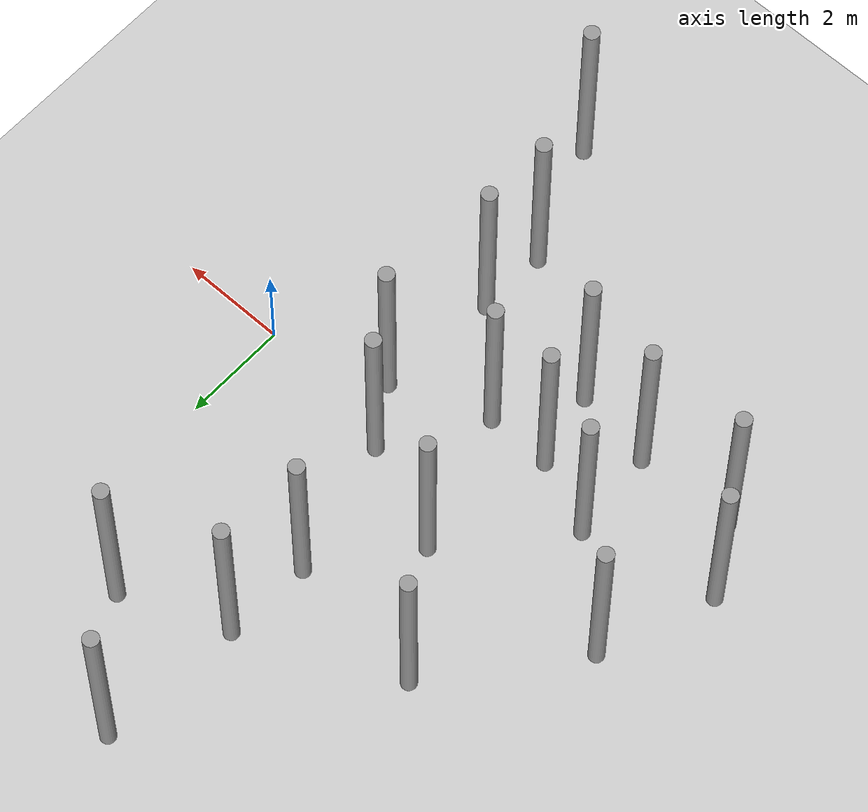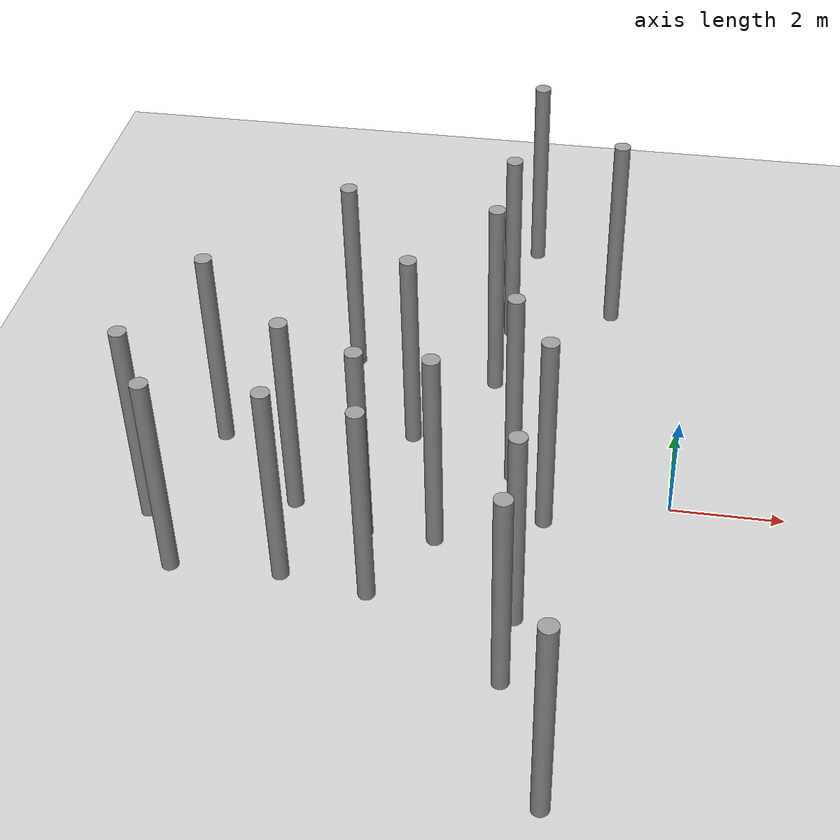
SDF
<sdf version="1.6">
 <world name="default">
  <model name="ground_plane">
   <static>1</static>
   <link name="link">
    <collision name="collision">
     <geometry><plane><normal>0 0 1</normal><size>100 100</size></plane></geometry>
     <surface><friction><ode><mu>100</mu><mu2>50</mu2></ode></friction></surface>
    </collision>
    <visual name="visual">
     <cast_shadows>0</cast_shadows>
     <geometry><plane><normal>0 0 1</normal><size>100 100</size></plane></geometry>
     <material>
      <script><uri>file://media/materials/scripts/gazebo.material</uri><name>Gazebo/Grey</name></script>
     </material>
    </visual>
   </link>
  </model>
  <model name="unit_cylinder">
   <link name="link">
    <inertial>
     <mass>1000</mass>
     <inertia><ixx>145.833</ixx><ixy>0</ixy><ixz>0</ixz><iyy>145.833</iyy><iyz>0</iyz><izz>125</izz></inertia>
    </inertial>
    <visual name="visual">
     <geometry><cylinder><radius>0.15</radius><length>4</length></cylinder></geometry>
     <material>
      <script><name>Gazebo/Grey</name><uri>file://media/materials/scripts/gazebo.material</uri></script>
      <shader type="pixel"><normal_map>__default__</normal_map></shader>
      <ambient>0.3 0.3 0.3 1</ambient>
      <diffuse>0.7 0.7 0.7 1</diffuse>
      <specular>0.01 0.01 0.01 1</specular>
      <emissive>0 0 0 1</emissive>
     </material>
    </visual>
    <collision name="collision">
     <geometry><cylinder><radius>0.15</radius><length>4</length></cylinder></geometry>
     <surface>
      <friction>
       <ode><mu>1</mu><mu2>1</mu2><fdir1>0 0 0</fdir1><slip1>0</slip1><slip2>0</slip2></ode>
       <torsional>
        <coefficient>1</coefficient>
        <patch_radius>0</patch_radius>
        <surface_radius>0</surface_radius>
        <use_patch_radius>1</use_patch_radius>
        <ode><slip>0</slip></ode>
       </torsional>
      </friction>
      <bounce><restitution_coefficient>0</restitution_coefficient><threshold>1e+06</threshold></bounce>
      <contact>
       <collide_without_contact>0</collide_without_contact>
       <collide_without_contact_bitmask>1</collide_without_contact_bitmask>
       <collide_bitmask>1</collide_bitmask>
       <ode>
        <soft_cfm>0</soft_cfm>
        <soft_erp>0.2</soft_erp>
        <kp>1e+13</kp>
        <kd>1</kd>
        <max_vel>0.01</max_vel>
        <min_depth>0</min_depth>
       </ode>
       <bullet>
        <split_impulse>1</split_impulse>
        <split_impulse_penetration_threshold>-0.01</split_impulse_penetration_threshold>
        <soft_cfm>0</soft_cfm>
        <soft_erp>0.2</soft_erp>
        <kp>1e+13</kp>
        <kd>1</kd>
       </bullet>
      </contact>
     </surface>
    </collision>
   </link>
   <static>0</static>
   <pose>-2.1717 -0.620709 2 0 0 -0.002853</pose>
  </model>
  <model name="unit_cylinder_clone_4">
   <link name="link">
    <inertial>
     <mass>1000</mass>
     <inertia><ixx>145.833</ixx><ixy>0</ixy><ixz>0</ixz><iyy>145.833</iyy><iyz>0</iyz><izz>125</izz></inertia>
    </inertial>
    <visual name="visual">
     <geometry><cylinder><radius>0.15</radius><length>4</length></cylinder></geometry>
     <material>
      <script><name>Gazebo/Grey</name><uri>file://media/materials/scripts/gazebo.material</uri></script>
      <shader type="pixel"><normal_map>__default__</normal_map></shader>
      <ambient>0.3 0.3 0.3 1</ambient>
      <diffuse>0.7 0.7 0.7 1</diffuse>
      <specular>0.01 0.01 0.01 1</specular>
      <emissive>0 0 0 1</emissive>
     </material>
    </visual>
    <collision name="collision">
     <geometry><cylinder><radius>0.15</radius><length>4</length></cylinder></geometry>
     <surface>
      <friction>
       <ode><mu>1</mu><mu2>1</mu2><fdir1>0 0 0</fdir1><slip1>0</slip1><slip2>0</slip2></ode>
       <torsional>
        <coefficient>1</coefficient>
        <patch_radius>0</patch_radius>
        <surface_radius>0</surface_radius>
        <use_patch_radius>1</use_patch_radius>
        <ode><slip>0</slip></ode>
       </torsional>
      </friction>
      <bounce><restitution_coefficient>0</restitution_coefficient><threshold>1e+06</threshold></bounce>
      <contact>
       <collide_without_contact>0</collide_without_contact>
       <collide_without_contact_bitmask>1</collide_without_contact_bitmask>
       <collide_bitmask>1</collide_bitmask>
       <ode>
        <soft_cfm>0</soft_cfm>
        <soft_erp>0.2</soft_erp>
        <kp>1e+13</kp>
        <kd>1</kd>
        <max_vel>0.01</max_vel>
        <min_depth>0</min_depth>
       </ode>
       <bullet>
        <split_impulse>1</split_impulse>
        <split_impulse_penetration_threshold>-0.01</split_impulse_penetration_threshold>
        <soft_cfm>0</soft_cfm>
        <soft_erp>0.2</soft_erp>
        <kp>1e+13</kp>
        <kd>1</kd>
       </bullet>
      </contact>
     </surface>
    </collision>
   </link>
   <static>0</static>
   <pose>-3.9809 -1.32842 2 0 0 -0.002698</pose>
  </model>
  <model name="unit_cylinder_clone_5">
   <link name="link">
    <inertial>
     <mass>1000</mass>
     <inertia><ixx>145.833</ixx><ixy>0</ixy><ixz>0</ixz><iyy>145.833</iyy><iyz>0</iyz><izz>125</izz></inertia>
    </inertial>
    <visual name="visual">
     <geometry><cylinder><radius>0.15</radius><length>4</length></cylinder></geometry>
     <material>
      <script><name>Gazebo/Grey</name><uri>file://media/materials/scripts/gazebo.material</uri></script>
      <shader type="pixel"><normal_map>__default__</normal_map></shader>
      <ambient>0.3 0.3 0.3 1</ambient>
      <diffuse>0.7 0.7 0.7 1</diffuse>
      <specular>0.01 0.01 0.01 1</specular>
      <emissive>0 0 0 1</emissive>
     </material>
    </visual>
    <collision name="collision">
     <geometry><cylinder><radius>0.15</radius><length>4</length></cylinder></geometry>
     <surface>
      <friction>
       <ode><mu>1</mu><mu2>1</mu2><fdir1>0 0 0</fdir1><slip1>0</slip1><slip2>0</slip2></ode>
       <torsional>
        <coefficient>1</coefficient>
        <patch_radius>0</patch_radius>
        <surface_radius>0</surface_radius>
        <use_patch_radius>1</use_patch_radius>
        <ode><slip>0</slip></ode>
       </torsional>
      </friction>
      <bounce><restitution_coefficient>0</restitution_coefficient><threshold>1e+06</threshold></bounce>
      <contact>
       <collide_without_contact>0</collide_without_contact>
       <collide_without_contact_bitmask>1</collide_without_contact_bitmask>
       <collide_bitmask>1</collide_bitmask>
       <ode>
        <soft_cfm>0</soft_cfm>
        <soft_erp>0.2</soft_erp>
        <kp>1e+13</kp>
        <kd>1</kd>
        <max_vel>0.01</max_vel>
        <min_depth>0</min_depth>
       </ode>
       <bullet>
        <split_impulse>1</split_impulse>
        <split_impulse_penetration_threshold>-0.01</split_impulse_penetration_threshold>
        <soft_cfm>0</soft_cfm>
        <soft_erp>0.2</soft_erp>
        <kp>1e+13</kp>
        <kd>1</kd>
       </bullet>
      </contact>
     </surface>
    </collision>
   </link>
   <static>0</static>
   <pose>-4.81547 1.25343 1.99999 0 0 -0.002692</pose>
  </model>
  <model name="unit_cylinder_clone_6">
   <link name="link">
    <inertial>
     <mass>1000</mass>
     <inertia><ixx>145.833</ixx><ixy>0</ixy><ixz>0</ixz><iyy>145.833</iyy><iyz>0</iyz><izz>125</izz></inertia>
    </inertial>
    <visual name="visual">
     <geometry><cylinder><radius>0.15</radius><length>4</length></cylinder></geometry>
     <material>
      <script><name>Gazebo/Grey</name><uri>file://media/materials/scripts/gazebo.material</uri></script>
      <shader type="pixel"><normal_map>__default__</normal_map></shader>
      <ambient>0.3 0.3 0.3 1</ambient>
      <diffuse>0.7 0.7 0.7 1</diffuse>
      <specular>0.01 0.01 0.01 1</specular>
      <emissive>0 0 0 1</emissive>
     </material>
    </visual>
    <collision name="collision">
     <geometry><cylinder><radius>0.15</radius><length>4</length></cylinder></geometry>
     <surface>
      <friction>
       <ode><mu>1</mu><mu2>1</mu2><fdir1>0 0 0</fdir1><slip1>0</slip1><slip2>0</slip2></ode>
       <torsional>
        <coefficient>1</coefficient>
        <patch_radius>0</patch_radius>
        <surface_radius>0</surface_radius>
        <use_patch_radius>1</use_patch_radius>
        <ode><slip>0</slip></ode>
       </torsional>
      </friction>
      <bounce><restitution_coefficient>0</restitution_coefficient><threshold>1e+06</threshold></bounce>
      <contact>
       <collide_without_contact>0</collide_without_contact>
       <collide_without_contact_bitmask>1</collide_without_contact_bitmask>
       <collide_bitmask>1</collide_bitmask>
       <ode>
        <soft_cfm>0</soft_cfm>
        <soft_erp>0.2</soft_erp>
        <kp>1e+13</kp>
        <kd>1</kd>
        <max_vel>0.01</max_vel>
        <min_depth>0</min_depth>
       </ode>
       <bullet>
        <split_impulse>1</split_impulse>
        <split_impulse_penetration_threshold>-0.01</split_impulse_penetration_threshold>
        <soft_cfm>0</soft_cfm>
        <soft_erp>0.2</soft_erp>
        <kp>1e+13</kp>
        <kd>1</kd>
       </bullet>
      </contact>
     </surface>
    </collision>
   </link>
   <static>0</static>
   <pose>-3.52321 3.00017 2 0 0 -0.002919</pose>
  </model>
  <model name="unit_cylinder_clone_7">
   <link name="link">
    <inertial>
     <mass>1000</mass>
     <inertia><ixx>145.833</ixx><ixy>0</ixy><ixz>0</ixz><iyy>145.833</iyy><iyz>0</iyz><izz>125</izz></inertia>
    </inertial>
    <visual name="visual">
     <geometry><cylinder><radius>0.15</radius><length>4</length></cylinder></geometry>
     <material>
      <script><name>Gazebo/Grey</name><uri>file://media/materials/scripts/gazebo.material</uri></script>
      <shader type="pixel"><normal_map>__default__</normal_map></shader>
      <ambient>0.3 0.3 0.3 1</ambient>
      <diffuse>0.7 0.7 0.7 1</diffuse>
      <specular>0.01 0.01 0.01 1</specular>
      <emissive>0 0 0 1</emissive>
     </material>
    </visual>
    <collision name="collision">
     <geometry><cylinder><radius>0.15</radius><length>4</length></cylinder></geometry>
     <surface>
      <friction>
       <ode><mu>1</mu><mu2>1</mu2><fdir1>0 0 0</fdir1><slip1>0</slip1><slip2>0</slip2></ode>
       <torsional>
        <coefficient>1</coefficient>
        <patch_radius>0</patch_radius>
        <surface_radius>0</surface_radius>
        <use_patch_radius>1</use_patch_radius>
        <ode><slip>0</slip></ode>
       </torsional>
      </friction>
      <bounce><restitution_coefficient>0</restitution_coefficient><threshold>1e+06</threshold></bounce>
      <contact>
       <collide_without_contact>0</collide_without_contact>
       <collide_without_contact_bitmask>1</collide_without_contact_bitmask>
       <collide_bitmask>1</collide_bitmask>
       <ode>
        <soft_cfm>0</soft_cfm>
        <soft_erp>0.2</soft_erp>
        <kp>1e+13</kp>
        <kd>1</kd>
        <max_vel>0.01</max_vel>
        <min_depth>0</min_depth>
       </ode>
       <bullet>
        <split_impulse>1</split_impulse>
        <split_impulse_penetration_threshold>-0.01</split_impulse_penetration_threshold>
        <soft_cfm>0</soft_cfm>
        <soft_erp>0.2</soft_erp>
        <kp>1e+13</kp>
        <kd>1</kd>
       </bullet>
      </contact>
     </surface>
    </collision>
   </link>
   <static>0</static>
   <pose>-2.39989 -2.93188 2 0 0 -0.002818</pose>
  </model>
  <model name="unit_cylinder_clone_8">
   <link name="link">
    <inertial>
     <mass>1000</mass>
     <inertia><ixx>145.833</ixx><ixy>0</ixy><ixz>0</ixz><iyy>145.833</iyy><iyz>0</iyz><izz>125</izz></inertia>
    </inertial>
    <visual name="visual">
     <geometry><cylinder><radius>0.15</radius><length>4</length></cylinder></geometry>
     <material>
      <script><name>Gazebo/Grey</name><uri>file://media/materials/scripts/gazebo.material</uri></script>
      <shader type="pixel"><normal_map>__default__</normal_map></shader>
      <ambient>0.3 0.3 0.3 1</ambient>
      <diffuse>0.7 0.7 0.7 1</diffuse>
      <specular>0.01 0.01 0.01 1</specular>
      <emissive>0 0 0 1</emissive>
     </material>
    </visual>
    <collision name="collision">
     <geometry><cylinder><radius>0.15</radius><length>4</length></cylinder></geometry>
     <surface>
      <friction>
       <ode><mu>1</mu><mu2>1</mu2><fdir1>0 0 0</fdir1><slip1>0</slip1><slip2>0</slip2></ode>
       <torsional>
        <coefficient>1</coefficient>
        <patch_radius>0</patch_radius>
        <surface_radius>0</surface_radius>
        <use_patch_radius>1</use_patch_radius>
        <ode><slip>0</slip></ode>
       </torsional>
      </friction>
      <bounce><restitution_coefficient>0</restitution_coefficient><threshold>1e+06</threshold></bounce>
      <contact>
       <collide_without_contact>0</collide_without_contact>
       <collide_without_contact_bitmask>1</collide_without_contact_bitmask>
       <collide_bitmask>1</collide_bitmask>
       <ode>
        <soft_cfm>0</soft_cfm>
        <soft_erp>0.2</soft_erp>
        <kp>1e+13</kp>
        <kd>1</kd>
        <max_vel>0.01</max_vel>
        <min_depth>0</min_depth>
       </ode>
       <bullet>
        <split_impulse>1</split_impulse>
        <split_impulse_penetration_threshold>-0.01</split_impulse_penetration_threshold>
        <soft_cfm>0</soft_cfm>
        <soft_erp>0.2</soft_erp>
        <kp>1e+13</kp>
        <kd>1</kd>
       </bullet>
      </contact>
     </surface>
    </collision>
   </link>
   <static>0</static>
   <pose>-2.85607 0.444434 2 0 0 -0.002866</pose>
  </model>
  <model name="unit_cylinder_clone_10">
   <link name="link">
    <inertial>
     <mass>1000</mass>
     <inertia><ixx>145.833</ixx><ixy>0</ixy><ixz>0</ixz><iyy>145.833</iyy><iyz>0</iyz><izz>125</izz></inertia>
    </inertial>
    <visual name="visual">
     <geometry><cylinder><radius>0.15</radius><length>4</length></cylinder></geometry>
     <material>
      <script><name>Gazebo/Grey</name><uri>file://media/materials/scripts/gazebo.material</uri></script>
      <shader type="pixel"><normal_map>__default__</normal_map></shader>
      <ambient>0.3 0.3 0.3 1</ambient>
      <diffuse>0.7 0.7 0.7 1</diffuse>
      <specular>0.01 0.01 0.01 1</specular>
      <emissive>0 0 0 1</emissive>
     </material>
    </visual>
    <collision name="collision">
     <geometry><cylinder><radius>0.15</radius><length>4</length></cylinder></geometry>
     <surface>
      <friction>
       <ode><mu>1</mu><mu2>1</mu2><fdir1>0 0 0</fdir1><slip1>0</slip1><slip2>0</slip2></ode>
       <torsional>
        <coefficient>1</coefficient>
        <patch_radius>0</patch_radius>
        <surface_radius>0</surface_radius>
        <use_patch_radius>1</use_patch_radius>
        <ode><slip>0</slip></ode>
       </torsional>
      </friction>
      <bounce><restitution_coefficient>0</restitution_coefficient><threshold>1e+06</threshold></bounce>
      <contact>
       <collide_without_contact>0</collide_without_contact>
       <collide_without_contact_bitmask>1</collide_without_contact_bitmask>
       <collide_bitmask>1</collide_bitmask>
       <ode>
        <soft_cfm>0</soft_cfm>
        <soft_erp>0.2</soft_erp>
        <kp>1e+13</kp>
        <kd>1</kd>
        <max_vel>0.01</max_vel>
        <min_depth>0</min_depth>
       </ode>
       <bullet>
        <split_impulse>1</split_impulse>
        <split_impulse_penetration_threshold>-0.01</split_impulse_penetration_threshold>
        <soft_cfm>0</soft_cfm>
        <soft_erp>0.2</soft_erp>
        <kp>1e+13</kp>
        <kd>1</kd>
       </bullet>
      </contact>
     </surface>
    </collision>
   </link>
   <static>0</static>
   <pose>-6.42357 -2.50125 2 0 0 -0.002756</pose>
  </model>
  <model name="unit_cylinder_clone_11">
   <link name="link">
    <inertial>
     <mass>1000</mass>
     <inertia><ixx>145.833</ixx><ixy>0</ixy><ixz>0</ixz><iyy>145.833</iyy><iyz>0</iyz><izz>125</izz></inertia>
    </inertial>
    <visual name="visual">
     <geometry><cylinder><radius>0.15</radius><length>4</length></cylinder></geometry>
     <material>
      <script><name>Gazebo/Grey</name><uri>file://media/materials/scripts/gazebo.material</uri></script>
      <shader type="pixel"><normal_map>__default__</normal_map></shader>
      <ambient>0.3 0.3 0.3 1</ambient>
      <diffuse>0.7 0.7 0.7 1</diffuse>
      <specular>0.01 0.01 0.01 1</specular>
      <emissive>0 0 0 1</emissive>
     </material>
    </visual>
    <collision name="collision">
     <geometry><cylinder><radius>0.15</radius><length>4</length></cylinder></geometry>
     <surface>
      <friction>
       <ode><mu>1</mu><mu2>1</mu2><fdir1>0 0 0</fdir1><slip1>0</slip1><slip2>0</slip2></ode>
       <torsional>
        <coefficient>1</coefficient>
        <patch_radius>0</patch_radius>
        <surface_radius>0</surface_radius>
        <use_patch_radius>1</use_patch_radius>
        <ode><slip>0</slip></ode>
       </torsional>
      </friction>
      <bounce><restitution_coefficient>0</restitution_coefficient><threshold>1e+06</threshold></bounce>
      <contact>
       <collide_without_contact>0</collide_without_contact>
       <collide_without_contact_bitmask>1</collide_without_contact_bitmask>
       <collide_bitmask>1</collide_bitmask>
       <ode>
        <soft_cfm>0</soft_cfm>
        <soft_erp>0.2</soft_erp>
        <kp>1e+13</kp>
        <kd>1</kd>
        <max_vel>0.01</max_vel>
        <min_depth>0</min_depth>
       </ode>
       <bullet>
        <split_impulse>1</split_impulse>
        <split_impulse_penetration_threshold>-0.01</split_impulse_penetration_threshold>
        <soft_cfm>0</soft_cfm>
        <soft_erp>0.2</soft_erp>
        <kp>1e+13</kp>
        <kd>1</kd>
       </bullet>
      </contact>
     </surface>
    </collision>
   </link>
   <static>0</static>
   <pose>-4.89753 -2.73769 2 0 0 -0.002756</pose>
  </model>
  <model name="unit_cylinder_clone_13">
   <link name="link">
    <inertial>
     <mass>1000</mass>
     <inertia><ixx>145.833</ixx><ixy>0</ixy><ixz>0</ixz><iyy>145.833</iyy><iyz>0</iyz><izz>125</izz></inertia>
    </inertial>
    <visual name="visual">
     <geometry><cylinder><radius>0.15</radius><length>4</length></cylinder></geometry>
     <material>
      <script><name>Gazebo/Grey</name><uri>file://media/materials/scripts/gazebo.material</uri></script>
      <shader type="pixel"><normal_map>__default__</normal_map></shader>
      <ambient>0.3 0.3 0.3 1</ambient>
      <diffuse>0.7 0.7 0.7 1</diffuse>
      <specular>0.01 0.01 0.01 1</specular>
      <emissive>0 0 0 1</emissive>
     </material>
    </visual>
    <collision name="collision">
     <geometry><cylinder><radius>0.15</radius><length>4</length></cylinder></geometry>
     <surface>
      <friction>
       <ode><mu>1</mu><mu2>1</mu2><fdir1>0 0 0</fdir1><slip1>0</slip1><slip2>0</slip2></ode>
       <torsional>
        <coefficient>1</coefficient>
        <patch_radius>0</patch_radius>
        <surface_radius>0</surface_radius>
        <use_patch_radius>1</use_patch_radius>
        <ode><slip>0</slip></ode>
       </torsional>
      </friction>
      <bounce><restitution_coefficient>0</restitution_coefficient><threshold>1e+06</threshold></bounce>
      <contact>
       <collide_without_contact>0</collide_without_contact>
       <collide_without_contact_bitmask>1</collide_without_contact_bitmask>
       <collide_bitmask>1</collide_bitmask>
       <ode>
        <soft_cfm>0</soft_cfm>
        <soft_erp>0.2</soft_erp>
        <kp>1e+13</kp>
        <kd>1</kd>
        <max_vel>0.01</max_vel>
        <min_depth>0</min_depth>
       </ode>
       <bullet>
        <split_impulse>1</split_impulse>
        <split_impulse_penetration_threshold>-0.01</split_impulse_penetration_threshold>
        <soft_cfm>0</soft_cfm>
        <soft_erp>0.2</soft_erp>
        <kp>1e+13</kp>
        <kd>1</kd>
       </bullet>
      </contact>
     </surface>
    </collision>
   </link>
   <static>0</static>
   <pose>-5.21821 -1.32978 1.99999 0 0 -0.002718</pose>
  </model>
  <model name="unit_cylinder_clone_14">
   <link name="link">
    <inertial>
     <mass>1000</mass>
     <inertia><ixx>145.833</ixx><ixy>0</ixy><ixz>0</ixz><iyy>145.833</iyy><iyz>0</iyz><izz>125</izz></inertia>
    </inertial>
    <visual name="visual">
     <geometry><cylinder><radius>0.15</radius><length>4</length></cylinder></geometry>
     <material>
      <script><name>Gazebo/Grey</name><uri>file://media/materials/scripts/gazebo.material</uri></script>
      <shader type="pixel"><normal_map>__default__</normal_map></shader>
      <ambient>0.3 0.3 0.3 1</ambient>
      <diffuse>0.7 0.7 0.7 1</diffuse>
      <specular>0.01 0.01 0.01 1</specular>
      <emissive>0 0 0 1</emissive>
     </material>
    </visual>
    <collision name="collision">
     <geometry><cylinder><radius>0.15</radius><length>4</length></cylinder></geometry>
     <surface>
      <friction>
       <ode><mu>1</mu><mu2>1</mu2><fdir1>0 0 0</fdir1><slip1>0</slip1><slip2>0</slip2></ode>
       <torsional>
        <coefficient>1</coefficient>
        <patch_radius>0</patch_radius>
        <surface_radius>0</surface_radius>
        <use_patch_radius>1</use_patch_radius>
        <ode><slip>0</slip></ode>
       </torsional>
      </friction>
      <bounce><restitution_coefficient>0</restitution_coefficient><threshold>1e+06</threshold></bounce>
      <contact>
       <collide_without_contact>0</collide_without_contact>
       <collide_without_contact_bitmask>1</collide_without_contact_bitmask>
       <collide_bitmask>1</collide_bitmask>
       <ode>
        <soft_cfm>0</soft_cfm>
        <soft_erp>0.2</soft_erp>
        <kp>1e+13</kp>
        <kd>1</kd>
        <max_vel>0.01</max_vel>
        <min_depth>0</min_depth>
       </ode>
       <bullet>
        <split_impulse>1</split_impulse>
        <split_impulse_penetration_threshold>-0.01</split_impulse_penetration_threshold>
        <soft_cfm>0</soft_cfm>
        <soft_erp>0.2</soft_erp>
        <kp>1e+13</kp>
        <kd>1</kd>
       </bullet>
      </contact>
     </surface>
    </collision>
   </link>
   <static>0</static>
   <pose>-6.57283 -0.768217 2 0 0 -0.003051</pose>
  </model>
  <model name="unit_cylinder_clone_15">
   <link name="link">
    <inertial>
     <mass>1000</mass>
     <inertia><ixx>145.833</ixx><ixy>0</ixy><ixz>0</ixz><iyy>145.833</iyy><iyz>0</iyz><izz>125</izz></inertia>
    </inertial>
    <visual name="visual">
     <geometry><cylinder><radius>0.15</radius><length>4</length></cylinder></geometry>
     <material>
      <script><name>Gazebo/Grey</name><uri>file://media/materials/scripts/gazebo.material</uri></script>
      <shader type="pixel"><normal_map>__default__</normal_map></shader>
      <ambient>0.3 0.3 0.3 1</ambient>
      <diffuse>0.7 0.7 0.7 1</diffuse>
      <specular>0.01 0.01 0.01 1</specular>
      <emissive>0 0 0 1</emissive>
     </material>
    </visual>
    <collision name="collision">
     <geometry><cylinder><radius>0.15</radius><length>4</length></cylinder></geometry>
     <surface>
      <friction>
       <ode><mu>1</mu><mu2>1</mu2><fdir1>0 0 0</fdir1><slip1>0</slip1><slip2>0</slip2></ode>
       <torsional>
        <coefficient>1</coefficient>
        <patch_radius>0</patch_radius>
        <surface_radius>0</surface_radius>
        <use_patch_radius>1</use_patch_radius>
        <ode><slip>0</slip></ode>
       </torsional>
      </friction>
      <bounce><restitution_coefficient>0</restitution_coefficient><threshold>1e+06</threshold></bounce>
      <contact>
       <collide_without_contact>0</collide_without_contact>
       <collide_without_contact_bitmask>1</collide_without_contact_bitmask>
       <collide_bitmask>1</collide_bitmask>
       <ode>
        <soft_cfm>0</soft_cfm>
        <soft_erp>0.2</soft_erp>
        <kp>1e+13</kp>
        <kd>1</kd>
        <max_vel>0.01</max_vel>
        <min_depth>0</min_depth>
       </ode>
       <bullet>
        <split_impulse>1</split_impulse>
        <split_impulse_penetration_threshold>-0.01</split_impulse_penetration_threshold>
        <soft_cfm>0</soft_cfm>
        <soft_erp>0.2</soft_erp>
        <kp>1e+13</kp>
        <kd>1</kd>
       </bullet>
      </contact>
     </surface>
    </collision>
   </link>
   <static>0</static>
   <pose>-8.32866 -2.56412 1.99999 0 0 -0.002834</pose>
  </model>
  <model name="unit_cylinder_clone_16">
   <link name="link">
    <inertial>
     <mass>1000</mass>
     <inertia><ixx>145.833</ixx><ixy>0</ixy><ixz>0</ixz><iyy>145.833</iyy><iyz>0</iyz><izz>125</izz></inertia>
    </inertial>
    <visual name="visual">
     <geometry><cylinder><radius>0.15</radius><length>4</length></cylinder></geometry>
     <material>
      <script><name>Gazebo/Grey</name><uri>file://media/materials/scripts/gazebo.material</uri></script>
      <shader type="pixel"><normal_map>__default__</normal_map></shader>
      <ambient>0.3 0.3 0.3 1</ambient>
      <diffuse>0.7 0.7 0.7 1</diffuse>
      <specular>0.01 0.01 0.01 1</specular>
      <emissive>0 0 0 1</emissive>
     </material>
    </visual>
    <collision name="collision">
     <geometry><cylinder><radius>0.15</radius><length>4</length></cylinder></geometry>
     <surface>
      <friction>
       <ode><mu>1</mu><mu2>1</mu2><fdir1>0 0 0</fdir1><slip1>0</slip1><slip2>0</slip2></ode>
       <torsional>
        <coefficient>1</coefficient>
        <patch_radius>0</patch_radius>
        <surface_radius>0</surface_radius>
        <use_patch_radius>1</use_patch_radius>
        <ode><slip>0</slip></ode>
       </torsional>
      </friction>
      <bounce><restitution_coefficient>0</restitution_coefficient><threshold>1e+06</threshold></bounce>
      <contact>
       <collide_without_contact>0</collide_without_contact>
       <collide_without_contact_bitmask>1</collide_without_contact_bitmask>
       <collide_bitmask>1</collide_bitmask>
       <ode>
        <soft_cfm>0</soft_cfm>
        <soft_erp>0.2</soft_erp>
        <kp>1e+13</kp>
        <kd>1</kd>
        <max_vel>0.01</max_vel>
        <min_depth>0</min_depth>
       </ode>
       <bullet>
        <split_impulse>1</split_impulse>
        <split_impulse_penetration_threshold>-0.01</split_impulse_penetration_threshold>
        <soft_cfm>0</soft_cfm>
        <soft_erp>0.2</soft_erp>
        <kp>1e+13</kp>
        <kd>1</kd>
       </bullet>
      </contact>
     </surface>
    </collision>
   </link>
   <static>0</static>
   <pose>-9.06624 -1.36021 1.99999 0 0 -0.002786</pose>
  </model>
  <model name="unit_cylinder_clone_17">
   <link name="link">
    <inertial>
     <mass>1000</mass>
     <inertia><ixx>145.833</ixx><ixy>0</ixy><ixz>0</ixz><iyy>145.833</iyy><iyz>0</iyz><izz>125</izz></inertia>
    </inertial>
    <visual name="visual">
     <geometry><cylinder><radius>0.15</radius><length>4</length></cylinder></geometry>
     <material>
      <script><name>Gazebo/Grey</name><uri>file://media/materials/scripts/gazebo.material</uri></script>
      <shader type="pixel"><normal_map>__default__</normal_map></shader>
      <ambient>0.3 0.3 0.3 1</ambient>
      <diffuse>0.7 0.7 0.7 1</diffuse>
      <specular>0.01 0.01 0.01 1</specular>
      <emissive>0 0 0 1</emissive>
     </material>
    </visual>
    <collision name="collision">
     <geometry><cylinder><radius>0.15</radius><length>4</length></cylinder></geometry>
     <surface>
      <friction>
       <ode><mu>1</mu><mu2>1</mu2><fdir1>0 0 0</fdir1><slip1>0</slip1><slip2>0</slip2></ode>
       <torsional>
        <coefficient>1</coefficient>
        <patch_radius>0</patch_radius>
        <surface_radius>0</surface_radius>
        <use_patch_radius>1</use_patch_radius>
        <ode><slip>0</slip></ode>
       </torsional>
      </friction>
      <bounce><restitution_coefficient>0</restitution_coefficient><threshold>1e+06</threshold></bounce>
      <contact>
       <collide_without_contact>0</collide_without_contact>
       <collide_without_contact_bitmask>1</collide_without_contact_bitmask>
       <collide_bitmask>1</collide_bitmask>
       <ode>
        <soft_cfm>0</soft_cfm>
        <soft_erp>0.2</soft_erp>
        <kp>1e+13</kp>
        <kd>1</kd>
        <max_vel>0.01</max_vel>
        <min_depth>0</min_depth>
       </ode>
       <bullet>
        <split_impulse>1</split_impulse>
        <split_impulse_penetration_threshold>-0.01</split_impulse_penetration_threshold>
        <soft_cfm>0</soft_cfm>
        <soft_erp>0.2</soft_erp>
        <kp>1e+13</kp>
        <kd>1</kd>
       </bullet>
      </contact>
     </surface>
    </collision>
   </link>
   <static>0</static>
   <pose>-8.26971 0.791684 2 0 0 -0.002864</pose>
  </model>
  <model name="unit_cylinder_clone_19">
   <link name="link">
    <inertial>
     <mass>1000</mass>
     <inertia><ixx>145.833</ixx><ixy>0</ixy><ixz>0</ixz><iyy>145.833</iyy><iyz>0</iyz><izz>125</izz></inertia>
    </inertial>
    <visual name="visual">
     <geometry><cylinder><radius>0.15</radius><length>4</length></cylinder></geometry>
     <material>
      <script><name>Gazebo/Grey</name><uri>file://media/materials/scripts/gazebo.material</uri></script>
      <shader type="pixel"><normal_map>__default__</normal_map></shader>
      <ambient>0.3 0.3 0.3 1</ambient>
      <diffuse>0.7 0.7 0.7 1</diffuse>
      <specular>0.01 0.01 0.01 1</specular>
      <emissive>0 0 0 1</emissive>
     </material>
    </visual>
    <collision name="collision">
     <geometry><cylinder><radius>0.15</radius><length>4</length></cylinder></geometry>
     <surface>
      <friction>
       <ode><mu>1</mu><mu2>1</mu2><fdir1>0 0 0</fdir1><slip1>0</slip1><slip2>0</slip2></ode>
       <torsional>
        <coefficient>1</coefficient>
        <patch_radius>0</patch_radius>
        <surface_radius>0</surface_radius>
        <use_patch_radius>1</use_patch_radius>
        <ode><slip>0</slip></ode>
       </torsional>
      </friction>
      <bounce><restitution_coefficient>0</restitution_coefficient><threshold>1e+06</threshold></bounce>
      <contact>
       <collide_without_contact>0</collide_without_contact>
       <collide_without_contact_bitmask>1</collide_without_contact_bitmask>
       <collide_bitmask>1</collide_bitmask>
       <ode>
        <soft_cfm>0</soft_cfm>
        <soft_erp>0.2</soft_erp>
        <kp>1e+13</kp>
        <kd>1</kd>
        <max_vel>0.01</max_vel>
        <min_depth>0</min_depth>
       </ode>
       <bullet>
        <split_impulse>1</split_impulse>
        <split_impulse_penetration_threshold>-0.01</split_impulse_penetration_threshold>
        <soft_cfm>0</soft_cfm>
        <soft_erp>0.2</soft_erp>
        <kp>1e+13</kp>
        <kd>1</kd>
       </bullet>
      </contact>
     </surface>
    </collision>
   </link>
   <static>0</static>
   <pose>-3.20756 7.43044 2 0 0 -0.003296</pose>
  </model>
  <model name="unit_cylinder_clone_25">
   <link name="link">
    <inertial>
     <mass>1000</mass>
     <inertia><ixx>145.833</ixx><ixy>0</ixy><ixz>0</ixz><iyy>145.833</iyy><iyz>0</iyz><izz>125</izz></inertia>
    </inertial>
    <visual name="visual">
     <geometry><cylinder><radius>0.15</radius><length>4</length></cylinder></geometry>
     <material>
      <script><name>Gazebo/Grey</name><uri>file://media/materials/scripts/gazebo.material</uri></script>
      <shader type="pixel"><normal_map>__default__</normal_map></shader>
      <ambient>0.3 0.3 0.3 1</ambient>
      <diffuse>0.7 0.7 0.7 1</diffuse>
      <specular>0.01 0.01 0.01 1</specular>
      <emissive>0 0 0 1</emissive>
     </material>
    </visual>
    <collision name="collision">
     <geometry><cylinder><radius>0.15</radius><length>4</length></cylinder></geometry>
     <surface>
      <friction>
       <ode><mu>1</mu><mu2>1</mu2><fdir1>0 0 0</fdir1><slip1>0</slip1><slip2>0</slip2></ode>
       <torsional>
        <coefficient>1</coefficient>
        <patch_radius>0</patch_radius>
        <surface_radius>0</surface_radius>
        <use_patch_radius>1</use_patch_radius>
        <ode><slip>0</slip></ode>
       </torsional>
      </friction>
      <bounce><restitution_coefficient>0</restitution_coefficient><threshold>1e+06</threshold></bounce>
      <contact>
       <collide_without_contact>0</collide_without_contact>
       <collide_without_contact_bitmask>1</collide_without_contact_bitmask>
       <collide_bitmask>1</collide_bitmask>
       <ode>
        <soft_cfm>0</soft_cfm>
        <soft_erp>0.2</soft_erp>
        <kp>1e+13</kp>
        <kd>1</kd>
        <max_vel>0.01</max_vel>
        <min_depth>0</min_depth>
       </ode>
       <bullet>
        <split_impulse>1</split_impulse>
        <split_impulse_penetration_threshold>-0.01</split_impulse_penetration_threshold>
        <soft_cfm>0</soft_cfm>
        <soft_erp>0.2</soft_erp>
        <kp>1e+13</kp>
        <kd>1</kd>
       </bullet>
      </contact>
     </surface>
    </collision>
   </link>
   <static>0</static>
   <pose>-1.48635 5.46296 1.99999 0 0 -0.002769</pose>
  </model>
  <model name="unit_cylinder_clone_39">
   <link name="link">
    <inertial>
     <mass>1000</mass>
     <inertia><ixx>145.833</ixx><ixy>0</ixy><ixz>0</ixz><iyy>145.833</iyy><iyz>0</iyz><izz>125</izz></inertia>
    </inertial>
    <visual name="visual">
     <geometry><cylinder><radius>0.15</radius><length>4</length></cylinder></geometry>
     <material>
      <script><name>Gazebo/Grey</name><uri>file://media/materials/scripts/gazebo.material</uri></script>
      <shader type="pixel"><normal_map>__default__</normal_map></shader>
      <ambient>0.3 0.3 0.3 1</ambient>
      <diffuse>0.7 0.7 0.7 1</diffuse>
      <specular>0.01 0.01 0.01 1</specular>
      <emissive>0 0 0 1</emissive>
     </material>
    </visual>
    <collision name="collision">
     <geometry><cylinder><radius>0.15</radius><length>4</length></cylinder></geometry>
     <surface>
      <friction>
       <ode><mu>1</mu><mu2>1</mu2><fdir1>0 0 0</fdir1><slip1>0</slip1><slip2>0</slip2></ode>
       <torsional>
        <coefficient>1</coefficient>
        <patch_radius>0</patch_radius>
        <surface_radius>0</surface_radius>
        <use_patch_radius>1</use_patch_radius>
        <ode><slip>0</slip></ode>
       </torsional>
      </friction>
      <bounce><restitution_coefficient>0</restitution_coefficient><threshold>1e+06</threshold></bounce>
      <contact>
       <collide_without_contact>0</collide_without_contact>
       <collide_without_contact_bitmask>1</collide_without_contact_bitmask>
       <collide_bitmask>1</collide_bitmask>
       <ode>
        <soft_cfm>0</soft_cfm>
        <soft_erp>0.2</soft_erp>
        <kp>1e+13</kp>
        <kd>1</kd>
        <max_vel>0.01</max_vel>
        <min_depth>0</min_depth>
       </ode>
       <bullet>
        <split_impulse>1</split_impulse>
        <split_impulse_penetration_threshold>-0.01</split_impulse_penetration_threshold>
        <soft_cfm>0</soft_cfm>
        <soft_erp>0.2</soft_erp>
        <kp>1e+13</kp>
        <kd>1</kd>
       </bullet>
      </contact>
     </surface>
    </collision>
   </link>
   <static>0</static>
   <pose>-1.55211 -6.51046 1.99999 0 0 -0.002813</pose>
  </model>
  <model name="unit_cylinder_clone_43">
   <link name="link">
    <inertial>
     <mass>1000</mass>
     <inertia><ixx>145.833</ixx><ixy>0</ixy><ixz>0</ixz><iyy>145.833</iyy><iyz>0</iyz><izz>125</izz></inertia>
    </inertial>
    <visual name="visual">
     <geometry><cylinder><radius>0.15</radius><length>4</length></cylinder></geometry>
     <material>
      <script><name>Gazebo/Grey</name><uri>file://media/materials/scripts/gazebo.material</uri></script>
      <shader type="pixel"><normal_map>__default__</normal_map></shader>
      <ambient>0.3 0.3 0.3 1</ambient>
      <diffuse>0.7 0.7 0.7 1</diffuse>
      <specular>0.01 0.01 0.01 1</specular>
      <emissive>0 0 0 1</emissive>
     </material>
    </visual>
    <collision name="collision">
     <geometry><cylinder><radius>0.15</radius><length>4</length></cylinder></geometry>
     <surface>
      <friction>
       <ode><mu>1</mu><mu2>1</mu2><fdir1>0 0 0</fdir1><slip1>0</slip1><slip2>0</slip2></ode>
       <torsional>
        <coefficient>1</coefficient>
        <patch_radius>0</patch_radius>
        <surface_radius>0</surface_radius>
        <use_patch_radius>1</use_patch_radius>
        <ode><slip>0</slip></ode>
       </torsional>
      </friction>
      <bounce><restitution_coefficient>0</restitution_coefficient><threshold>1e+06</threshold></bounce>
      <contact>
       <collide_without_contact>0</collide_without_contact>
       <collide_without_contact_bitmask>1</collide_without_contact_bitmask>
       <collide_bitmask>1</collide_bitmask>
       <ode>
        <soft_cfm>0</soft_cfm>
        <soft_erp>0.2</soft_erp>
        <kp>1e+13</kp>
        <kd>1</kd>
        <max_vel>0.01</max_vel>
        <min_depth>0</min_depth>
       </ode>
       <bullet>
        <split_impulse>1</split_impulse>
        <split_impulse_penetration_threshold>-0.01</split_impulse_penetration_threshold>
        <soft_cfm>0</soft_cfm>
        <soft_erp>0.2</soft_erp>
        <kp>1e+13</kp>
        <kd>1</kd>
       </bullet>
      </contact>
     </surface>
    </collision>
   </link>
   <static>0</static>
   <pose>-2.44237 -4.26844 2 0 0 -0.003264</pose>
  </model>
  <model name="unit_cylinder_clone_8_clone">
   <link name="link">
    <inertial>
     <mass>1000</mass>
     <inertia><ixx>145.833</ixx><ixy>0</ixy><ixz>0</ixz><iyy>145.833</iyy><iyz>0</iyz><izz>125</izz></inertia>
    </inertial>
    <visual name="visual">
     <geometry><cylinder><radius>0.15</radius><length>4</length></cylinder></geometry>
     <material>
      <script><name>Gazebo/Grey</name><uri>file://media/materials/scripts/gazebo.material</uri></script>
      <shader type="pixel"><normal_map>__default__</normal_map></shader>
      <ambient>0.3 0.3 0.3 1</ambient>
      <diffuse>0.7 0.7 0.7 1</diffuse>
      <specular>0.01 0.01 0.01 1</specular>
      <emissive>0 0 0 1</emissive>
     </material>
    </visual>
    <collision name="collision">
     <geometry><cylinder><radius>0.15</radius><length>4</length></cylinder></geometry>
     <surface>
      <friction>
       <ode><mu>1</mu><mu2>1</mu2><fdir1>0 0 0</fdir1><slip1>0</slip1><slip2>0</slip2></ode>
       <torsional>
        <coefficient>1</coefficient>
        <patch_radius>0</patch_radius>
        <surface_radius>0</surface_radius>
        <use_patch_radius>1</use_patch_radius>
        <ode><slip>0</slip></ode>
       </torsional>
      </friction>
      <bounce><restitution_coefficient>0</restitution_coefficient><threshold>1e+06</threshold></bounce>
      <contact>
       <collide_without_contact>0</collide_without_contact>
       <collide_without_contact_bitmask>1</collide_without_contact_bitmask>
       <collide_bitmask>1</collide_bitmask>
       <ode>
        <soft_cfm>0</soft_cfm>
        <soft_erp>0.2</soft_erp>
        <kp>1e+13</kp>
        <kd>1</kd>
        <max_vel>0.01</max_vel>
        <min_depth>0</min_depth>
       </ode>
       <bullet>
        <split_impulse>1</split_impulse>
        <split_impulse_penetration_threshold>-0.01</split_impulse_penetration_threshold>
        <soft_cfm>0</soft_cfm>
        <soft_erp>0.2</soft_erp>
        <kp>1e+13</kp>
        <kd>1</kd>
       </bullet>
      </contact>
     </surface>
    </collision>
   </link>
   <static>0</static>
   <pose>-6.27248 3.31118 2 0 0 -0.002756</pose>
  </model>
  <model name="unit_cylinder_clone_44_clone_5">
   <link name="link">
    <inertial>
     <mass>1000</mass>
     <inertia><ixx>145.833</ixx><ixy>0</ixy><ixz>0</ixz><iyy>145.833</iyy><iyz>0</iyz><izz>125</izz></inertia>
    </inertial>
    <visual name="visual">
     <geometry><cylinder><radius>0.15</radius><length>4</length></cylinder></geometry>
     <material>
      <script><name>Gazebo/Grey</name><uri>file://media/materials/scripts/gazebo.material</uri></script>
      <shader type="pixel"><normal_map>__default__</normal_map></shader>
      <ambient>0.3 0.3 0.3 1</ambient>
      <diffuse>0.7 0.7 0.7 1</diffuse>
      <specular>0.01 0.01 0.01 1</specular>
      <emissive>0 0 0 1</emissive>
     </material>
    </visual>
    <collision name="collision">
     <geometry><cylinder><radius>0.15</radius><length>4</length></cylinder></geometry>
     <surface>
      <friction>
       <ode><mu>1</mu><mu2>1</mu2><fdir1>0 0 0</fdir1><slip1>0</slip1><slip2>0</slip2></ode>
       <torsional>
        <coefficient>1</coefficient>
        <patch_radius>0</patch_radius>
        <surface_radius>0</surface_radius>
        <use_patch_radius>1</use_patch_radius>
        <ode><slip>0</slip></ode>
       </torsional>
      </friction>
      <bounce><restitution_coefficient>0</restitution_coefficient><threshold>1e+06</threshold></bounce>
      <contact>
       <collide_without_contact>0</collide_without_contact>
       <collide_without_contact_bitmask>1</collide_without_contact_bitmask>
       <collide_bitmask>1</collide_bitmask>
       <ode>
        <soft_cfm>0</soft_cfm>
        <soft_erp>0.2</soft_erp>
        <kp>1e+13</kp>
        <kd>1</kd>
        <max_vel>0.01</max_vel>
        <min_depth>0</min_depth>
       </ode>
       <bullet>
        <split_impulse>1</split_impulse>
        <split_impulse_penetration_threshold>-0.01</split_impulse_penetration_threshold>
        <soft_cfm>0</soft_cfm>
        <soft_erp>0.2</soft_erp>
        <kp>1e+13</kp>
        <kd>1</kd>
       </bullet>
      </contact>
     </surface>
    </collision>
   </link>
   <static>0</static>
   <pose>-3.42298 4.66515 1.99999 0 0 -0.000391</pose>
  </model>
 </world>
</sdf>
